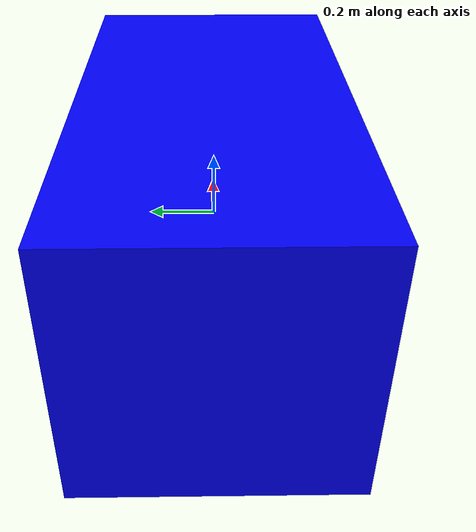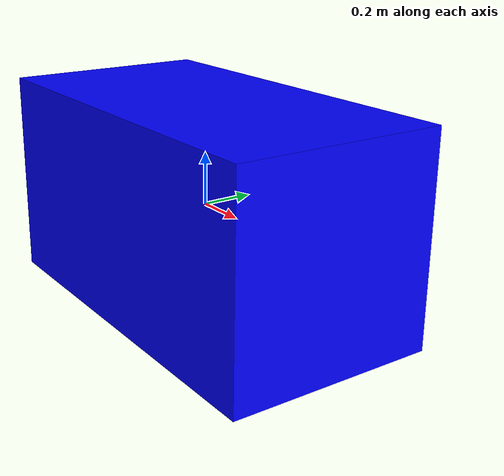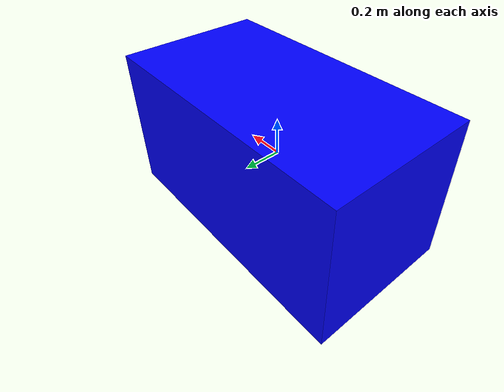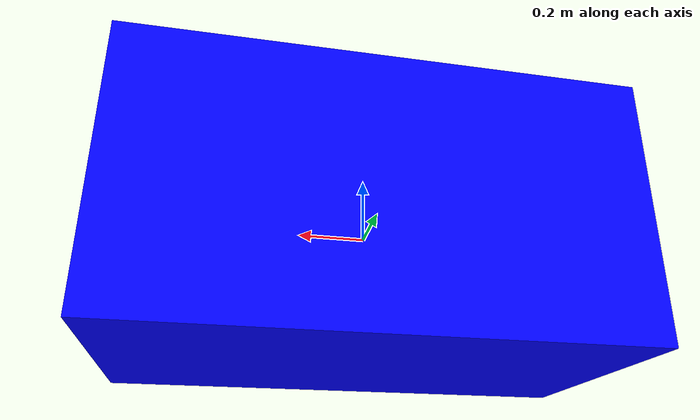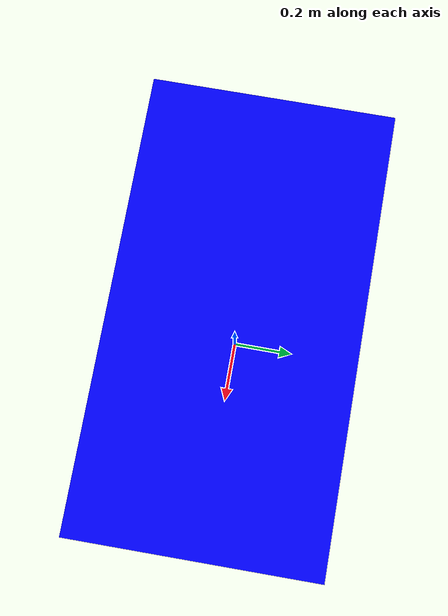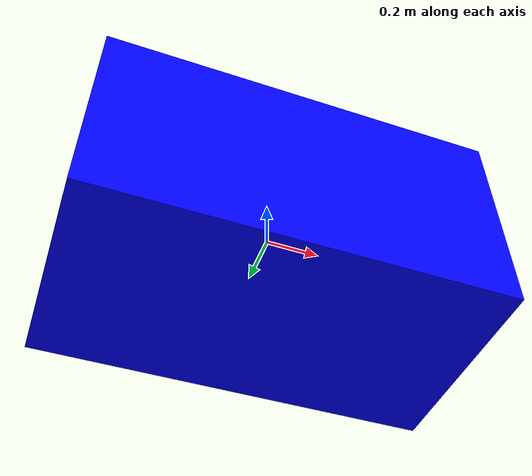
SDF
<?xml version="1.0"?>
<sdf version="1.6">
  <model name="submarine">
    <static>false</static>
    <pose>0 0 0 0 0 0</pose>

    <!-- Main body -->
    <link name="base_link">
      <pose>0 0 0 0 0 0</pose>
      <inertial>
        <mass>10.0</mass>
        <inertia>
          <ixx>0.5</ixx>
          <ixy>0</ixy>
          <ixz>0</ixz>
          <iyy>0.5</iyy>
          <iyz>0</iyz>
          <izz>0.5</izz>
        </inertia>
      </inertial>

      <collision name="collision">
        <geometry>
          <box>
            <size>1.5 0.8 0.8</size>
          </box>
        </geometry>
      </collision>

      <visual name="visual">
        <geometry>
          <box>
            <size>1.5 0.8 0.8</size>
          </box>
        </geometry>
        <material>
          <ambient>0.0 0.0 1.0 1.0</ambient>
          <diffuse>0.0 0.0 1.0 1.0</diffuse>
          <specular>0.0 0.0 0.1 1.0</specular>
        </material>
      </visual>
    </link>

    <link name="gps_link">
      <pose>0 0 1.0 0 0 0</pose>
      <inertial>
        <mass>0.1</mass>
        <inertia>
          <ixx>0.0001</ixx>
          <iyy>0.0001</iyy>
          <izz>0.0001</izz>
        </inertia>
      </inertial>
      <sensor name="gps_sensor" type="gps">
        <pose>0 0 0 0 0 0</pose>
        <update_rate>10</update_rate>
        <plugin name="gps_plugin" filename="libgazebo_ros_gps_sensor.so">
          <ros>
            <namespace>/submarine</namespace>
          </ros>
          <frame_name>gps_link</frame_name>
          <topic_name>gps</topic_name>
        </plugin>
      </sensor>
    </link>

    <!-- Joint connecting body to GPS link -->
    <joint name="gps_joint" type="fixed">
      <parent>base_link</parent>
      <child>gps_link</child>
    </joint>

    <link name="depth_link">
      <pose>0 0 -1.0 0 0 0</pose>
      <inertial>
        <mass>0.1</mass>
        <inertia>
          <ixx>0.0001</ixx>
          <iyy>0.0001</iyy>
          <izz>0.0001</izz>
        </inertia>
      </inertial>
      <sensor name="depth_sensor" type="depth">
        <pose>0 0 0 0 0 0</pose>
        <update_rate>10</update_rate>
        <plugin name="depth_plugin" filename="libgazebo_ros_depth_sensor.so">
          <ros>
            <namespace>/submarine</namespace>
          </ros>
          <frame_name>depth_link</frame_name>
          <topic_name>depth</topic_name>
        </plugin>
      </sensor>
    </link>
    <joint name="depth_joint" type="fixed">
      <parent>base_link</parent>
      <child>depth_link</child>
    </joint>
  </model>
</sdf>
